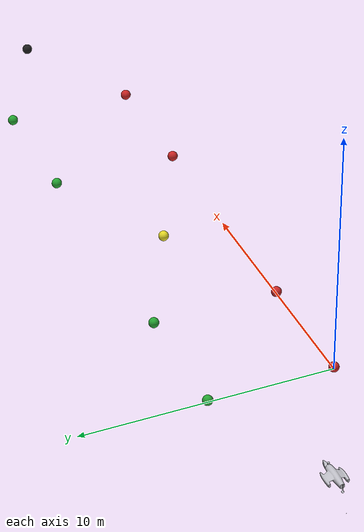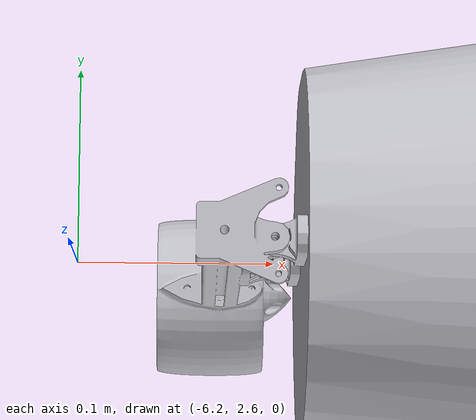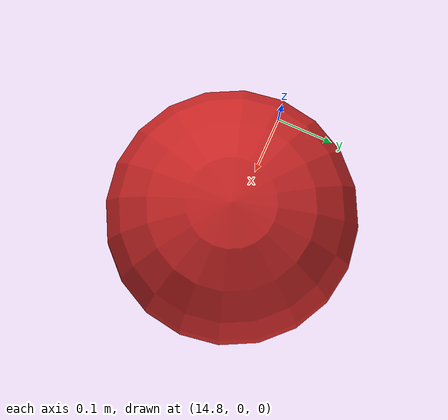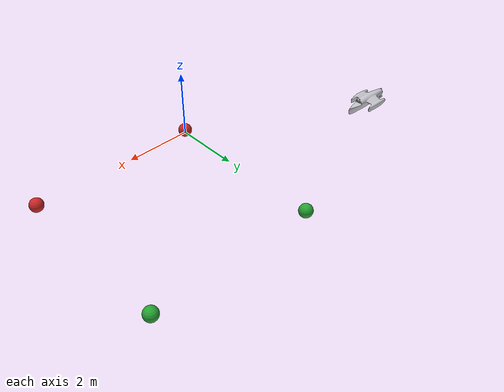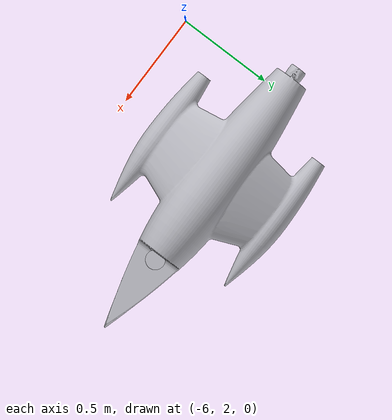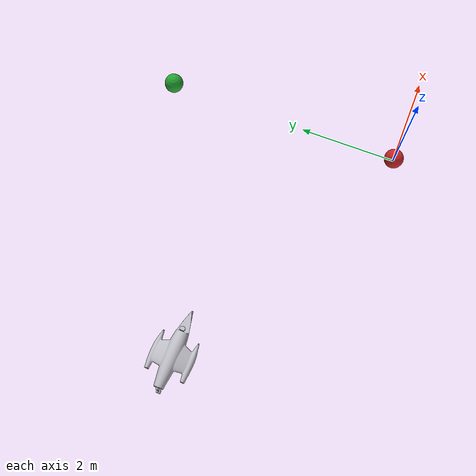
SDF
<sdf version="1.6">
 <world name="default">
  <light name="sun" type="directional">
   <pose>0 0 10 0 -0 0</pose>
   <diffuse>0.8 0.8 0.8 1</diffuse>
   <specular>0.2 0.2 0.2 1</specular>
   <attenuation>
    <range>1000</range>
    <constant>0.9</constant>
    <linear>0.01</linear>
    <quadratic>0.001</quadratic>
   </attenuation>
   <direction>-0.5 0.1 -0.9</direction>
  </light>
  <gravity>0 0 0</gravity>
  <magnetic_field>6e-06 2.3e-05 -4.2e-05</magnetic_field>
  <atmosphere type="adiabatic"/>
  <physics name="default_physics" default="0" type="ode">
   <max_step_size>0.001</max_step_size>
   <real_time_factor>1</real_time_factor>
   <real_time_update_rate>1000</real_time_update_rate>
  </physics>
  <scene><ambient>0.4 0.4 0.4 1</ambient><background>0.7 0.7 0.7 1</background><shadows>1</shadows></scene>
  <audio><device>default</device></audio>
  <spherical_coordinates>
   <surface_model>EARTH_WGS84</surface_model>
   <latitude_deg>0</latitude_deg>
   <longitude_deg>0</longitude_deg>
   <elevation>0</elevation>
   <heading_deg>0</heading_deg>
  </spherical_coordinates>
  <model name="unit_sphere_1">
   <pose>0 0 0.100001 0 -0 0</pose>
   <link name="link">
    <inertial>
     <mass>1</mass>
     <inertia><ixx>0.1</ixx><ixy>0</ixy><ixz>0</ixz><iyy>0.1</iyy><iyz>0</iyz><izz>0.1</izz></inertia>
    </inertial>
    <collision name="collision"><geometry><sphere><radius>0.2</radius></sphere></geometry></collision>
    <visual name="visual">
     <geometry><sphere><radius>0.2</radius></sphere></geometry>
     <material>
      <script><name>Gazebo/Red</name><uri>file://media/materials/scripts/gazebo.material</uri></script>
     </material>
    </visual>
   </link>
  </model>
  <model name="unit_sphere_2">
   <pose>5 0 0.100001 0 -0 0</pose>
   <link name="link">
    <inertial>
     <mass>1</mass>
     <inertia><ixx>0.1</ixx><ixy>0</ixy><ixz>0</ixz><iyy>0.1</iyy><iyz>0</iyz><izz>0.1</izz></inertia>
    </inertial>
    <collision name="collision"><geometry><sphere><radius>0.2</radius></sphere></geometry></collision>
    <visual name="visual">
     <geometry><sphere><radius>0.2</radius></sphere></geometry>
     <material>
      <script><name>Gazebo/Red</name><uri>file://media/materials/scripts/gazebo.material</uri></script>
     </material>
    </visual>
   </link>
  </model>
  <model name="unit_sphere_3">
   <pose>10 2.5 0.100001 0 -0 0</pose>
   <link name="link">
    <inertial>
     <mass>1</mass>
     <inertia><ixx>0.1</ixx><ixy>0</ixy><ixz>0</ixz><iyy>0.1</iyy><iyz>0</iyz><izz>0.1</izz></inertia>
    </inertial>
    <collision name="collision"><geometry><sphere><radius>0.2</radius></sphere></geometry></collision>
    <visual name="visual">
     <geometry><sphere><radius>0.2</radius></sphere></geometry>
     <material>
      <script><name>Gazebo/Yellow</name><uri>file://media/materials/scripts/gazebo.material</uri></script>
     </material>
    </visual>
   </link>
  </model>
  <model name="unit_sphere_4">
   <pose>15 0 0.100001 0 -0 0</pose>
   <link name="link">
    <inertial>
     <mass>1</mass>
     <inertia><ixx>0.1</ixx><ixy>0</ixy><ixz>0</ixz><iyy>0.1</iyy><iyz>0</iyz><izz>0.1</izz></inertia>
    </inertial>
    <collision name="collision"><geometry><sphere><radius>0.2</radius></sphere></geometry></collision>
    <visual name="visual">
     <geometry><sphere><radius>0.2</radius></sphere></geometry>
     <material>
      <script><name>Gazebo/Red</name><uri>file://media/materials/scripts/gazebo.material</uri></script>
     </material>
    </visual>
   </link>
  </model>
  <model name="unit_sphere_5">
   <pose>20 0 0.100001 0 -0 0</pose>
   <link name="link">
    <inertial>
     <mass>1</mass>
     <inertia><ixx>0.1</ixx><ixy>0</ixy><ixz>0</ixz><iyy>0.1</iyy><iyz>0</iyz><izz>0.1</izz></inertia>
    </inertial>
    <collision name="collision"><geometry><sphere><radius>0.2</radius></sphere></geometry></collision>
    <visual name="visual">
     <geometry><sphere><radius>0.2</radius></sphere></geometry>
     <material>
      <script><name>Gazebo/Red</name><uri>file://media/materials/scripts/gazebo.material</uri></script>
     </material>
    </visual>
   </link>
  </model>
  <model name="unit_sphere_6">
   <pose>0 5 0.100001 0 -0 0</pose>
   <link name="link">
    <inertial>
     <mass>1</mass>
     <inertia><ixx>0.1</ixx><ixy>0</ixy><ixz>0</ixz><iyy>0.1</iyy><iyz>0</iyz><izz>0.1</izz></inertia>
    </inertial>
    <collision name="collision"><geometry><sphere><radius>0.2</radius></sphere></geometry></collision>
    <visual name="visual">
     <geometry><sphere><radius>0.2</radius></sphere></geometry>
     <material>
      <script><name>Gazebo/Green</name><uri>file://media/materials/scripts/gazebo.material</uri></script>
     </material>
    </visual>
   </link>
  </model>
  <model name="unit_sphere_7">
   <pose>5 5 0.100001 0 -0 0</pose>
   <link name="link">
    <inertial>
     <mass>1</mass>
     <inertia><ixx>0.1</ixx><ixy>0</ixy><ixz>0</ixz><iyy>0.1</iyy><iyz>0</iyz><izz>0.1</izz></inertia>
    </inertial>
    <collision name="collision"><geometry><sphere><radius>0.2</radius></sphere></geometry></collision>
    <visual name="visual">
     <geometry><sphere><radius>0.2</radius></sphere></geometry>
     <material>
      <script><name>Gazebo/Green</name><uri>file://media/materials/scripts/gazebo.material</uri></script>
     </material>
    </visual>
   </link>
  </model>
  <model name="unit_sphere_9">
   <pose>15 5 0.100001 0 -0 0</pose>
   <link name="link">
    <inertial>
     <mass>1</mass>
     <inertia><ixx>0.1</ixx><ixy>0</ixy><ixz>0</ixz><iyy>0.1</iyy><iyz>0</iyz><izz>0.1</izz></inertia>
    </inertial>
    <collision name="collision"><geometry><sphere><radius>0.2</radius></sphere></geometry></collision>
    <visual name="visual">
     <geometry><sphere><radius>0.2</radius></sphere></geometry>
     <material>
      <script><name>Gazebo/Green</name><uri>file://media/materials/scripts/gazebo.material</uri></script>
     </material>
    </visual>
   </link>
  </model>
  <model name="unit_sphere_10">
   <pose>20 5 0.100001 0 -0 0</pose>
   <link name="link">
    <inertial>
     <mass>1</mass>
     <inertia><ixx>0.1</ixx><ixy>0</ixy><ixz>0</ixz><iyy>0.1</iyy><iyz>0</iyz><izz>0.1</izz></inertia>
    </inertial>
    <collision name="collision"><geometry><sphere><radius>0.2</radius></sphere></geometry></collision>
    <visual name="visual">
     <geometry><sphere><radius>0.2</radius></sphere></geometry>
     <material>
      <script><name>Gazebo/Green</name><uri>file://media/materials/scripts/gazebo.material</uri></script>
     </material>
    </visual>
   </link>
  </model>
  <model name="unit_sphere_11">
   <pose>25 2.5 0.100001 0 -0 0</pose>
   <link name="link">
    <inertial>
     <mass>1</mass>
     <inertia><ixx>0.1</ixx><ixy>0</ixy><ixz>0</ixz><iyy>0.1</iyy><iyz>0</iyz><izz>0.1</izz></inertia>
    </inertial>
    <collision name="collision"><geometry><sphere><radius>0.2</radius></sphere></geometry></collision>
    <visual name="visual">
     <geometry><sphere><radius>0.2</radius></sphere></geometry>
     <material>
      <script><name>Gazebo/Black</name><uri>file://media/materials/scripts/gazebo.material</uri></script>
     </material>
    </visual>
   </link>
  </model>
  <model name="agribot">
   <link name="base_footprint">
    <inertial>
     <pose>0.666375 0.204625 1.26177 0 -0 0</pose>
     <mass>1005.21</mass>
     <inertia>
      <ixx>39.4744</ixx>
      <ixy>-0.00388234</ixy>
      <ixz>4.11057</ixz>
      <iyy>104.107</iyy>
      <iyz>-0.00218767</iyz>
      <izz>128.432</izz>
     </inertia>
    </inertial>
    <collision name="base_footprint_fixed_joint_lump__base_link_collision">
     <pose>0 0 1.25 0 -0 0</pose>
     <geometry>
      <mesh>
       <scale>0.001 0.001 0.001</scale>
       <uri>/home/hakan/norway_ws/src/trimaran_description/meshes/base_link.stl</uri>
      </mesh>
     </geometry>
     <surface><friction><ode><mu>0.2</mu><mu2>0.2</mu2></ode></friction></surface>
    </collision>
    <collision name="base_footprint_fixed_joint_lump__lidar_1_collision_1">
     <pose>0 0 0.95 0 -0 0</pose>
     <geometry>
      <mesh>
       <scale>0.001 0.001 0.001</scale>
       <uri>/home/hakan/norway_ws/src/trimaran_description/meshes/lidar_1.stl</uri>
      </mesh>
     </geometry>
     <surface><friction><ode><mu>0.2</mu><mu2>0.2</mu2></ode></friction></surface>
    </collision>
    <collision name="base_footprint_fixed_joint_lump__kamera_1_collision_2">
     <pose>0 0.15 1.37 0 -0 0</pose>
     <geometry>
      <mesh>
       <scale>0.001 0.001 0.001</scale>
       <uri>/home/hakan/norway_ws/src/trimaran_description/meshes/kamera_1.stl</uri>
      </mesh>
     </geometry>
     <surface><friction><ode><mu>0.2</mu><mu2>0.2</mu2></ode></friction></surface>
    </collision>
    <visual name="base_footprint_visual"><geometry><box><size>0.001 0.001 0.001</size></box></geometry></visual>
    <visual name="base_footprint_fixed_joint_lump__base_link_visual_1">
     <pose>0 0 1.25 0 -0 0</pose>
     <geometry>
      <mesh>
       <scale>0.001 0.001 0.001</scale>
       <uri>/home/hakan/norway_ws/src/trimaran_description/meshes/base_link.stl</uri>
      </mesh>
     </geometry>
     <material>
      <script><name>Gazebo/Silver</name><uri>file://media/materials/scripts/gazebo.material</uri></script>
     </material>
    </visual>
    <visual name="base_footprint_fixed_joint_lump__lidar_1_visual_2">
     <pose>0 0 1.25 0 -0 0</pose>
     <geometry>
      <mesh>
       <scale>0.001 0.001 0.001</scale>
       <uri>/home/hakan/norway_ws/src/trimaran_description/meshes/lidar_1.stl</uri>
      </mesh>
     </geometry>
     <material>
      <script><name>Gazebo/Silver</name><uri>file://media/materials/scripts/gazebo.material</uri></script>
     </material>
    </visual>
    <visual name="base_footprint_fixed_joint_lump__kamera_1_visual_3">
     <pose>0 -0.01 1.23 0 -0 0</pose>
     <geometry>
      <mesh>
       <scale>0.001 0.001 0.001</scale>
       <uri>/home/hakan/norway_ws/src/trimaran_description/meshes/kamera_1.stl</uri>
      </mesh>
     </geometry>
     <material>
      <script><name>Gazebo/Silver</name><uri>file://media/materials/scripts/gazebo.material</uri></script>
     </material>
    </visual>
    <sensor name="head_hokuyo_sensor" type="ray">
     <visualize>1</visualize>
     <update_rate>50</update_rate>
     <ray>
      <scan>
       <horizontal>
        <samples>720</samples>
        <resolution>1</resolution>
        <min_angle>-2.35619</min_angle>
        <max_angle>2.35619</max_angle>
       </horizontal>
       <vertical><samples>1</samples><min_angle>0</min_angle><max_angle>0</max_angle></vertical>
      </scan>
      <range><min>0.05</min><max>25</max><resolution>0.01</resolution></range>
      <noise><type>gaussian</type><mean>0</mean><stddev>0.01</stddev></noise>
     </ray>
     <plugin name="gazebo_ros_head_hokuyo_controller" filename="libgazebo_ros_laser.so">
      <topicName>/laser/scan</topicName>
      <frameName>lidar_1</frameName>
      <robotNamespace>/</robotNamespace>
     </plugin>
     <pose>1.103 0.204615 1.4817 0 -0 0</pose>
    </sensor>
    <self_collide>1</self_collide>
    <sensor name="camera" type="camera">
     <update_rate>30</update_rate>
     <camera name="head">
      <horizontal_fov>1.39626</horizontal_fov>
      <image><width>800</width><height>800</height><format>R8G8B8</format></image>
      <clip><near>0.02</near><far>300</far></clip>
      <noise><type>gaussian</type><mean>0</mean><stddev>0.007</stddev></noise>
     </camera>
     <plugin name="camera_controller" filename="libgazebo_ros_camera.so">
      <alwaysOn>1</alwaysOn>
      <updateRate>0.0</updateRate>
      <cameraName>camera</cameraName>
      <imageTopicName>image_raw</imageTopicName>
      <cameraInfoTopicName>camera_info</cameraInfoTopicName>
      <frameName>camera_link</frameName>
      <hackBaseline>0.07</hackBaseline>
      <distortionK1>0.0</distortionK1>
      <distortionK2>0.0</distortionK2>
      <distortionK3>0.0</distortionK3>
      <distortionT1>0.0</distortionT1>
      <distortionT2>0.0</distortionT2>
      <robotNamespace>/</robotNamespace>
     </plugin>
     <pose>1.103 0.199416 1.37 0 -0 0</pose>
    </sensor>
   </link>
   <link name="motor_1">
    <pose>-0.015 0.204616 1.26238 0 -0 0</pose>
    <inertial>
     <pose>-0.022555 -0 -0.092818 0 -0 0</pose>
     <mass>1.33376</mass>
     <inertia>
      <ixx>0.017758</ixx>
      <ixy>0</ixy>
      <ixz>-0.000377</ixz>
      <iyy>0.017462</iyy>
      <iyz>0</iyz>
      <izz>0.00084</izz>
     </inertia>
    </inertial>
    <collision name="motor_1_collision">
     <pose>0.015 -0.204616 -0.012382 0 -0 0</pose>
     <geometry>
      <mesh>
       <scale>0.001 0.001 0.001</scale>
       <uri>/home/hakan/norway_ws/src/trimaran_description/meshes/motor_1.stl</uri>
      </mesh>
     </geometry>
     <surface><friction><ode><mu>0.2</mu><mu2>0.2</mu2></ode></friction></surface>
    </collision>
    <visual name="motor_1_visual">
     <pose>0.015 -0.204616 -0.012382 0 -0 0</pose>
     <geometry>
      <mesh>
       <scale>0.001 0.001 0.001</scale>
       <uri>/home/hakan/norway_ws/src/trimaran_description/meshes/motor_1.stl</uri>
      </mesh>
     </geometry>
     <material>
      <script><name>Gazebo/Silver</name><uri>file://media/materials/scripts/gazebo.material</uri></script>
     </material>
    </visual>
    <self_collide>1</self_collide>
   </link>
   <joint name="Revolute4" type="revolute">
    <child>motor_1</child>
    <parent>base_footprint</parent>
    <axis>
     <xyz>0 0 -1</xyz>
     <limit><lower>-1e+16</lower><upper>1e+16</upper></limit>
     <dynamics><spring_reference>0</spring_reference><spring_stiffness>0</spring_stiffness></dynamics>
     <use_parent_model_frame>1</use_parent_model_frame>
    </axis>
   </joint>
   <plugin name="control" filename="libgazebo_ros_control.so"><robotNamespace>/</robotNamespace></plugin>
   <static>0</static>
   <plugin name="object_controller" filename="libgazebo_ros_planar_move.so">
    <commandTopic>cmd_vel</commandTopic>
    <odometryTopic>odom</odometryTopic>
    <odometryFrame>odom</odometryFrame>
    <odometryRate>20.0</odometryRate>
    <robotBaseFrame>base_footprint</robotBaseFrame>
    <robotNamespace>/</robotNamespace>
   </plugin>
   <pose>-6.08728 2.39537 -1.2477 0 -0 0</pose>
  </model>
 </world>
</sdf>
